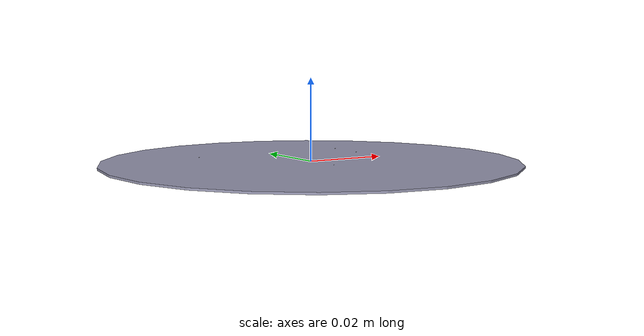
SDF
<?xml version="1.0"?>
<sdf version="1.9">
  <model name="wafer_grid">
    <link name="link">

      <visual name="wafer_visual">
        <geometry>
          <cylinder>
            <radius>0.05</radius>
            <length>0.0005</length>
          </cylinder>
        </geometry>
        <material>
          <ambient>0.6 0.6 0.7 1</ambient>
          <diffuse>0.6 0.6 0.7 1</diffuse>
          <specular>0.2 0.2 0.2 1</specular>
        </material>
      </visual>

      <collision name="collision">
        <geometry>
          <cylinder>
            <radius>0.05</radius>
            <length>0.0005</length>
          </cylinder>
        </geometry>
      </collision>

      <inertial>
        <mass>0.01</mass>
        <inertia>
          <ixx>6.250208333333334e-06</ixx>
          <iyy>6.250208333333334e-06</iyy>
          <izz>1.2500000000000002e-05</izz>
          <ixy>0</ixy>
          <ixz>0</ixz>
          <iyz>0</iyz>
        </inertia>
      </inertial>

      <visual name="cross_h_-0.02_-0.02">
        <pose>-0.02 -0.02 0.000255 0 0 0</pose>
        <geometry>
          <box>
            <size>0.0002 5e-05 1e-05</size>
          </box>
        </geometry>
        <material>
          <ambient>0 0 0 1</ambient>
          <diffuse>0 0 0 1</diffuse>
        </material>
      </visual>
      <visual name="cross_v_-0.02_-0.02">
        <pose>-0.02 -0.02 0.000255 0 0 0</pose>
        <geometry>
          <box>
            <size>5e-05 0.0002 1e-05</size>
          </box>
        </geometry>
        <material>
          <ambient>0 0 0 1</ambient>
          <diffuse>0 0 0 1</diffuse>
        </material>
      </visual>
      <visual name="cross_h_-0.02_-0.01">
        <pose>-0.02 -0.01 0.000255 0 0 0</pose>
        <geometry>
          <box>
            <size>0.0002 5e-05 1e-05</size>
          </box>
        </geometry>
        <material>
          <ambient>0 0 0 1</ambient>
          <diffuse>0 0 0 1</diffuse>
        </material>
      </visual>
      <visual name="cross_v_-0.02_-0.01">
        <pose>-0.02 -0.01 0.000255 0 0 0</pose>
        <geometry>
          <box>
            <size>5e-05 0.0002 1e-05</size>
          </box>
        </geometry>
        <material>
          <ambient>0 0 0 1</ambient>
          <diffuse>0 0 0 1</diffuse>
        </material>
      </visual>
      <visual name="cross_h_-0.02_0.0">
        <pose>-0.02 0.0 0.000255 0 0 0</pose>
        <geometry>
          <box>
            <size>0.0002 5e-05 1e-05</size>
          </box>
        </geometry>
        <material>
          <ambient>0 0 0 1</ambient>
          <diffuse>0 0 0 1</diffuse>
        </material>
      </visual>
      <visual name="cross_v_-0.02_0.0">
        <pose>-0.02 0.0 0.000255 0 0 0</pose>
        <geometry>
          <box>
            <size>5e-05 0.0002 1e-05</size>
          </box>
        </geometry>
        <material>
          <ambient>0 0 0 1</ambient>
          <diffuse>0 0 0 1</diffuse>
        </material>
      </visual>
      <visual name="cross_h_-0.02_0.009999999999999998">
        <pose>-0.02 0.009999999999999998 0.000255 0 0 0</pose>
        <geometry>
          <box>
            <size>0.0002 5e-05 1e-05</size>
          </box>
        </geometry>
        <material>
          <ambient>0 0 0 1</ambient>
          <diffuse>0 0 0 1</diffuse>
        </material>
      </visual>
      <visual name="cross_v_-0.02_0.009999999999999998">
        <pose>-0.02 0.009999999999999998 0.000255 0 0 0</pose>
        <geometry>
          <box>
            <size>5e-05 0.0002 1e-05</size>
          </box>
        </geometry>
        <material>
          <ambient>0 0 0 1</ambient>
          <diffuse>0 0 0 1</diffuse>
        </material>
      </visual>
      <visual name="cross_h_-0.02_0.02">
        <pose>-0.02 0.02 0.000255 0 0 0</pose>
        <geometry>
          <box>
            <size>0.0002 5e-05 1e-05</size>
          </box>
        </geometry>
        <material>
          <ambient>0 0 0 1</ambient>
          <diffuse>0 0 0 1</diffuse>
        </material>
      </visual>
      <visual name="cross_v_-0.02_0.02">
        <pose>-0.02 0.02 0.000255 0 0 0</pose>
        <geometry>
          <box>
            <size>5e-05 0.0002 1e-05</size>
          </box>
        </geometry>
        <material>
          <ambient>0 0 0 1</ambient>
          <diffuse>0 0 0 1</diffuse>
        </material>
      </visual>
      <visual name="cross_h_-0.01_-0.02">
        <pose>-0.01 -0.02 0.000255 0 0 0</pose>
        <geometry>
          <box>
            <size>0.0002 5e-05 1e-05</size>
          </box>
        </geometry>
        <material>
          <ambient>0 0 0 1</ambient>
          <diffuse>0 0 0 1</diffuse>
        </material>
      </visual>
      <visual name="cross_v_-0.01_-0.02">
        <pose>-0.01 -0.02 0.000255 0 0 0</pose>
        <geometry>
          <box>
            <size>5e-05 0.0002 1e-05</size>
          </box>
        </geometry>
        <material>
          <ambient>0 0 0 1</ambient>
          <diffuse>0 0 0 1</diffuse>
        </material>
      </visual>
      <visual name="cross_h_-0.01_-0.01">
        <pose>-0.01 -0.01 0.000255 0 0 0</pose>
        <geometry>
          <box>
            <size>0.0002 5e-05 1e-05</size>
          </box>
        </geometry>
        <material>
          <ambient>0 0 0 1</ambient>
          <diffuse>0 0 0 1</diffuse>
        </material>
      </visual>
      <visual name="cross_v_-0.01_-0.01">
        <pose>-0.01 -0.01 0.000255 0 0 0</pose>
        <geometry>
          <box>
            <size>5e-05 0.0002 1e-05</size>
          </box>
        </geometry>
        <material>
          <ambient>0 0 0 1</ambient>
          <diffuse>0 0 0 1</diffuse>
        </material>
      </visual>
      <visual name="cross_h_-0.01_0.0">
        <pose>-0.01 0.0 0.000255 0 0 0</pose>
        <geometry>
          <box>
            <size>0.0002 5e-05 1e-05</size>
          </box>
        </geometry>
        <material>
          <ambient>0 0 0 1</ambient>
          <diffuse>0 0 0 1</diffuse>
        </material>
      </visual>
      <visual name="cross_v_-0.01_0.0">
        <pose>-0.01 0.0 0.000255 0 0 0</pose>
        <geometry>
          <box>
            <size>5e-05 0.0002 1e-05</size>
          </box>
        </geometry>
        <material>
          <ambient>0 0 0 1</ambient>
          <diffuse>0 0 0 1</diffuse>
        </material>
      </visual>
      <visual name="cross_h_-0.01_0.009999999999999998">
        <pose>-0.01 0.009999999999999998 0.000255 0 0 0</pose>
        <geometry>
          <box>
            <size>0.0002 5e-05 1e-05</size>
          </box>
        </geometry>
        <material>
          <ambient>0 0 0 1</ambient>
          <diffuse>0 0 0 1</diffuse>
        </material>
      </visual>
      <visual name="cross_v_-0.01_0.009999999999999998">
        <pose>-0.01 0.009999999999999998 0.000255 0 0 0</pose>
        <geometry>
          <box>
            <size>5e-05 0.0002 1e-05</size>
          </box>
        </geometry>
        <material>
          <ambient>0 0 0 1</ambient>
          <diffuse>0 0 0 1</diffuse>
        </material>
      </visual>
      <visual name="cross_h_-0.01_0.02">
        <pose>-0.01 0.02 0.000255 0 0 0</pose>
        <geometry>
          <box>
            <size>0.0002 5e-05 1e-05</size>
          </box>
        </geometry>
        <material>
          <ambient>0 0 0 1</ambient>
          <diffuse>0 0 0 1</diffuse>
        </material>
      </visual>
      <visual name="cross_v_-0.01_0.02">
        <pose>-0.01 0.02 0.000255 0 0 0</pose>
        <geometry>
          <box>
            <size>5e-05 0.0002 1e-05</size>
          </box>
        </geometry>
        <material>
          <ambient>0 0 0 1</ambient>
          <diffuse>0 0 0 1</diffuse>
        </material>
      </visual>
      <visual name="cross_h_0.0_-0.02">
        <pose>0.0 -0.02 0.000255 0 0 0</pose>
        <geometry>
          <box>
            <size>0.0002 5e-05 1e-05</size>
          </box>
        </geometry>
        <material>
          <ambient>0 0 0 1</ambient>
          <diffuse>0 0 0 1</diffuse>
        </material>
      </visual>
      <visual name="cross_v_0.0_-0.02">
        <pose>0.0 -0.02 0.000255 0 0 0</pose>
        <geometry>
          <box>
            <size>5e-05 0.0002 1e-05</size>
          </box>
        </geometry>
        <material>
          <ambient>0 0 0 1</ambient>
          <diffuse>0 0 0 1</diffuse>
        </material>
      </visual>
      <visual name="cross_h_0.0_-0.01">
        <pose>0.0 -0.01 0.000255 0 0 0</pose>
        <geometry>
          <box>
            <size>0.0002 5e-05 1e-05</size>
          </box>
        </geometry>
        <material>
          <ambient>0 0 0 1</ambient>
          <diffuse>0 0 0 1</diffuse>
        </material>
      </visual>
      <visual name="cross_v_0.0_-0.01">
        <pose>0.0 -0.01 0.000255 0 0 0</pose>
        <geometry>
          <box>
            <size>5e-05 0.0002 1e-05</size>
          </box>
        </geometry>
        <material>
          <ambient>0 0 0 1</ambient>
          <diffuse>0 0 0 1</diffuse>
        </material>
      </visual>
      <visual name="cross_h_0.0_0.0">
        <pose>0.0 0.0 0.000255 0 0 0</pose>
        <geometry>
          <box>
            <size>0.0002 5e-05 1e-05</size>
          </box>
        </geometry>
        <material>
          <ambient>0 0 0 1</ambient>
          <diffuse>0 0 0 1</diffuse>
        </material>
      </visual>
      <visual name="cross_v_0.0_0.0">
        <pose>0.0 0.0 0.000255 0 0 0</pose>
        <geometry>
          <box>
            <size>5e-05 0.0002 1e-05</size>
          </box>
        </geometry>
        <material>
          <ambient>0 0 0 1</ambient>
          <diffuse>0 0 0 1</diffuse>
        </material>
      </visual>
      <visual name="cross_h_0.0_0.009999999999999998">
        <pose>0.0 0.009999999999999998 0.000255 0 0 0</pose>
        <geometry>
          <box>
            <size>0.0002 5e-05 1e-05</size>
          </box>
        </geometry>
        <material>
          <ambient>0 0 0 1</ambient>
          <diffuse>0 0 0 1</diffuse>
        </material>
      </visual>
      <visual name="cross_v_0.0_0.009999999999999998">
        <pose>0.0 0.009999999999999998 0.000255 0 0 0</pose>
        <geometry>
          <box>
            <size>5e-05 0.0002 1e-05</size>
          </box>
        </geometry>
        <material>
          <ambient>0 0 0 1</ambient>
          <diffuse>0 0 0 1</diffuse>
        </material>
      </visual>
      <visual name="cross_h_0.0_0.02">
        <pose>0.0 0.02 0.000255 0 0 0</pose>
        <geometry>
          <box>
            <size>0.0002 5e-05 1e-05</size>
          </box>
        </geometry>
        <material>
          <ambient>0 0 0 1</ambient>
          <diffuse>0 0 0 1</diffuse>
        </material>
      </visual>
      <visual name="cross_v_0.0_0.02">
        <pose>0.0 0.02 0.000255 0 0 0</pose>
        <geometry>
          <box>
            <size>5e-05 0.0002 1e-05</size>
          </box>
        </geometry>
        <material>
          <ambient>0 0 0 1</ambient>
          <diffuse>0 0 0 1</diffuse>
        </material>
      </visual>
      <visual name="cross_h_0.009999999999999998_-0.02">
        <pose>0.009999999999999998 -0.02 0.000255 0 0 0</pose>
        <geometry>
          <box>
            <size>0.0002 5e-05 1e-05</size>
          </box>
        </geometry>
        <material>
          <ambient>0 0 0 1</ambient>
          <diffuse>0 0 0 1</diffuse>
        </material>
      </visual>
      <visual name="cross_v_0.009999999999999998_-0.02">
        <pose>0.009999999999999998 -0.02 0.000255 0 0 0</pose>
        <geometry>
          <box>
            <size>5e-05 0.0002 1e-05</size>
          </box>
        </geometry>
        <material>
          <ambient>0 0 0 1</ambient>
          <diffuse>0 0 0 1</diffuse>
        </material>
      </visual>
      <visual name="cross_h_0.009999999999999998_-0.01">
        <pose>0.009999999999999998 -0.01 0.000255 0 0 0</pose>
        <geometry>
          <box>
            <size>0.0002 5e-05 1e-05</size>
          </box>
        </geometry>
        <material>
          <ambient>0 0 0 1</ambient>
          <diffuse>0 0 0 1</diffuse>
        </material>
      </visual>
      <visual name="cross_v_0.009999999999999998_-0.01">
        <pose>0.009999999999999998 -0.01 0.000255 0 0 0</pose>
        <geometry>
          <box>
            <size>5e-05 0.0002 1e-05</size>
          </box>
        </geometry>
        <material>
          <ambient>0 0 0 1</ambient>
          <diffuse>0 0 0 1</diffuse>
        </material>
      </visual>
      <visual name="cross_h_0.009999999999999998_0.0">
        <pose>0.009999999999999998 0.0 0.000255 0 0 0</pose>
        <geometry>
          <box>
            <size>0.0002 5e-05 1e-05</size>
          </box>
        </geometry>
        <material>
          <ambient>0 0 0 1</ambient>
          <diffuse>0 0 0 1</diffuse>
        </material>
      </visual>
      <visual name="cross_v_0.009999999999999998_0.0">
        <pose>0.009999999999999998 0.0 0.000255 0 0 0</pose>
        <geometry>
          <box>
            <size>5e-05 0.0002 1e-05</size>
          </box>
        </geometry>
        <material>
          <ambient>0 0 0 1</ambient>
          <diffuse>0 0 0 1</diffuse>
        </material>
      </visual>
      <visual name="cross_h_0.009999999999999998_0.009999999999999998">
        <pose>0.009999999999999998 0.009999999999999998 0.000255 0 0 0</pose>
        <geometry>
          <box>
            <size>0.0002 5e-05 1e-05</size>
          </box>
        </geometry>
        <material>
          <ambient>0 0 0 1</ambient>
          <diffuse>0 0 0 1</diffuse>
        </material>
      </visual>
      <visual name="cross_v_0.009999999999999998_0.009999999999999998">
        <pose>0.009999999999999998 0.009999999999999998 0.000255 0 0 0</pose>
        <geometry>
          <box>
            <size>5e-05 0.0002 1e-05</size>
          </box>
        </geometry>
        <material>
          <ambient>0 0 0 1</ambient>
          <diffuse>0 0 0 1</diffuse>
        </material>
      </visual>
      <visual name="cross_h_0.009999999999999998_0.02">
        <pose>0.009999999999999998 0.02 0.000255 0 0 0</pose>
        <geometry>
          <box>
            <size>0.0002 5e-05 1e-05</size>
          </box>
        </geometry>
        <material>
          <ambient>0 0 0 1</ambient>
          <diffuse>0 0 0 1</diffuse>
        </material>
      </visual>
      <visual name="cross_v_0.009999999999999998_0.02">
        <pose>0.009999999999999998 0.02 0.000255 0 0 0</pose>
        <geometry>
          <box>
            <size>5e-05 0.0002 1e-05</size>
          </box>
        </geometry>
        <material>
          <ambient>0 0 0 1</ambient>
          <diffuse>0 0 0 1</diffuse>
        </material>
      </visual>
      <visual name="cross_h_0.02_-0.02">
        <pose>0.02 -0.02 0.000255 0 0 0</pose>
        <geometry>
          <box>
            <size>0.0002 5e-05 1e-05</size>
          </box>
        </geometry>
        <material>
          <ambient>0 0 0 1</ambient>
          <diffuse>0 0 0 1</diffuse>
        </material>
      </visual>
      <visual name="cross_v_0.02_-0.02">
        <pose>0.02 -0.02 0.000255 0 0 0</pose>
        <geometry>
          <box>
            <size>5e-05 0.0002 1e-05</size>
          </box>
        </geometry>
        <material>
          <ambient>0 0 0 1</ambient>
          <diffuse>0 0 0 1</diffuse>
        </material>
      </visual>
      <visual name="cross_h_0.02_-0.01">
        <pose>0.02 -0.01 0.000255 0 0 0</pose>
        <geometry>
          <box>
            <size>0.0002 5e-05 1e-05</size>
          </box>
        </geometry>
        <material>
          <ambient>0 0 0 1</ambient>
          <diffuse>0 0 0 1</diffuse>
        </material>
      </visual>
      <visual name="cross_v_0.02_-0.01">
        <pose>0.02 -0.01 0.000255 0 0 0</pose>
        <geometry>
          <box>
            <size>5e-05 0.0002 1e-05</size>
          </box>
        </geometry>
        <material>
          <ambient>0 0 0 1</ambient>
          <diffuse>0 0 0 1</diffuse>
        </material>
      </visual>
      <visual name="cross_h_0.02_0.0">
        <pose>0.02 0.0 0.000255 0 0 0</pose>
        <geometry>
          <box>
            <size>0.0002 5e-05 1e-05</size>
          </box>
        </geometry>
        <material>
          <ambient>0 0 0 1</ambient>
          <diffuse>0 0 0 1</diffuse>
        </material>
      </visual>
      <visual name="cross_v_0.02_0.0">
        <pose>0.02 0.0 0.000255 0 0 0</pose>
        <geometry>
          <box>
            <size>5e-05 0.0002 1e-05</size>
          </box>
        </geometry>
        <material>
          <ambient>0 0 0 1</ambient>
          <diffuse>0 0 0 1</diffuse>
        </material>
      </visual>
      <visual name="cross_h_0.02_0.009999999999999998">
        <pose>0.02 0.009999999999999998 0.000255 0 0 0</pose>
        <geometry>
          <box>
            <size>0.0002 5e-05 1e-05</size>
          </box>
        </geometry>
        <material>
          <ambient>0 0 0 1</ambient>
          <diffuse>0 0 0 1</diffuse>
        </material>
      </visual>
      <visual name="cross_v_0.02_0.009999999999999998">
        <pose>0.02 0.009999999999999998 0.000255 0 0 0</pose>
        <geometry>
          <box>
            <size>5e-05 0.0002 1e-05</size>
          </box>
        </geometry>
        <material>
          <ambient>0 0 0 1</ambient>
          <diffuse>0 0 0 1</diffuse>
        </material>
      </visual>
      <visual name="cross_h_0.02_0.02">
        <pose>0.02 0.02 0.000255 0 0 0</pose>
        <geometry>
          <box>
            <size>0.0002 5e-05 1e-05</size>
          </box>
        </geometry>
        <material>
          <ambient>0 0 0 1</ambient>
          <diffuse>0 0 0 1</diffuse>
        </material>
      </visual>
      <visual name="cross_v_0.02_0.02">
        <pose>0.02 0.02 0.000255 0 0 0</pose>
        <geometry>
          <box>
            <size>5e-05 0.0002 1e-05</size>
          </box>
        </geometry>
        <material>
          <ambient>0 0 0 1</ambient>
          <diffuse>0 0 0 1</diffuse>
        </material>
      </visual>
    </link>
  </model>
</sdf>
